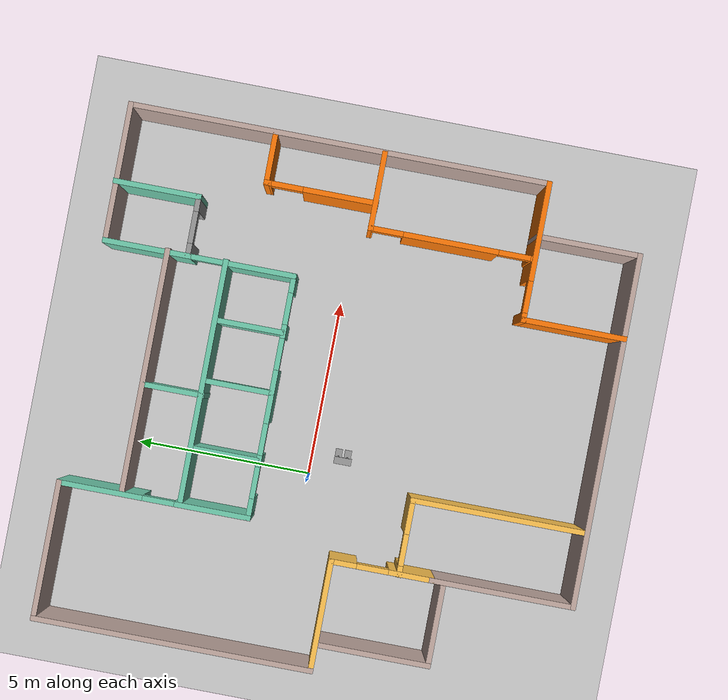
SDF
<sdf version="1.7">
 <world name="default">
  <model name="ground_plane">
   <static>1</static>
   <link name="link">
    <collision name="collision">
     <geometry><plane><normal>0 0 1</normal><size>100 100</size></plane></geometry>
     <surface>
      <contact><collide_bitmask>65535</collide_bitmask></contact>
      <friction><ode><mu>100</mu><mu2>50</mu2></ode></friction>
     </surface>
    </collision>
    <visual name="visual">
     <cast_shadows>0</cast_shadows>
     <geometry><plane><normal>0 0 1</normal><size>100 100</size></plane></geometry>
     <material>
      <script><uri>file://media/materials/scripts/gazebo.material</uri><name>Gazebo/Grey</name></script>
     </material>
    </visual>
   </link>
  </model>
  <model name="Building">
   <pose>2.005 -0.57388 0 0 -0 0</pose>
   <link name="Wall_0">
    <collision name="Wall_0_Collision">
     <geometry><box><size>8 0.15 2.5</size></box></geometry>
     <pose>0 0 1.25 0 -0 0</pose>
    </collision>
    <visual name="Wall_0_Visual">
     <pose>0 0 1.25 0 -0 0</pose>
     <geometry><box><size>8 0.15 2.5</size></box></geometry>
     <material>
      <script><uri>file://media/materials/scripts/gazebo.material</uri><name>Gazebo/Grey</name></script>
      <ambient>0.760784 0.662745 0.627451 1</ambient>
     </material>
     <meta><layer>0</layer></meta>
    </visual>
    <pose>-7.275 3.41888 0 0 -0 1.5708</pose>
   </link>
   <link name="Wall_1">
    <collision name="Wall_1_Collision">
     <geometry><box><size>4 0.15 2.5</size></box></geometry>
     <pose>0 0 1.25 0 -0 0</pose>
    </collision>
    <visual name="Wall_1_Visual">
     <pose>0 0 1.25 0 -0 0</pose>
     <geometry><box><size>4 0.15 2.5</size></box></geometry>
     <material>
      <script><uri>file://media/materials/scripts/gazebo.material</uri><name>Gazebo/Grey</name></script>
      <ambient>0.760784 0.662745 0.627451 1</ambient>
     </material>
     <meta><layer>0</layer></meta>
    </visual>
    <pose>-5.35 7.34388 0 0 -0 0</pose>
   </link>
   <link name="Wall_10">
    <pose>5.35 -4.50612 0 0 -0 3.14159</pose>
    <visual name="Wall_10_Visual_0">
     <pose>-0.586196 0 1.25 0 -0 0</pose>
     <geometry><box><size>2.82761 0.15 2.5</size></box></geometry>
     <material>
      <script><uri>file://media/materials/scripts/gazebo.material</uri><name>Gazebo/Grey</name></script>
      <ambient>0.996078 0.47451 0.0196078 1</ambient>
     </material>
     <meta><layer>0</layer></meta>
    </visual>
    <collision name="Wall_10_Collision_0">
     <geometry><box><size>2.82761 0.15 2.5</size></box></geometry>
     <pose>-0.586196 0 1.25 0 -0 0</pose>
    </collision>
    <visual name="Wall_10_Visual_1">
     <pose>1.8638 0 1.25 0 -0 0</pose>
     <geometry><box><size>0.272392 0.15 2.5</size></box></geometry>
     <material>
      <script><uri>file://media/materials/scripts/gazebo.material</uri><name>Gazebo/Grey</name></script>
      <ambient>0.996078 0.47451 0.0196078 1</ambient>
     </material>
     <meta><layer>0</layer></meta>
    </visual>
    <collision name="Wall_10_Collision_1">
     <geometry><box><size>0.272392 0.15 2.5</size></box></geometry>
     <pose>1.8638 0 1.25 0 -0 0</pose>
    </collision>
    <visual name="Wall_10_Visual_2">
     <pose>1.27761 0 2.25 0 -0 0</pose>
     <geometry><box><size>0.9 0.15 0.5</size></box></geometry>
     <material>
      <script><uri>file://media/materials/scripts/gazebo.material</uri><name>Gazebo/Grey</name></script>
      <ambient>0.996078 0.47451 0.0196078 1</ambient>
     </material>
     <meta><layer>0</layer></meta>
    </visual>
    <collision name="Wall_10_Collision_2">
     <geometry><box><size>0.9 0.15 0.5</size></box></geometry>
     <pose>1.27761 0 2.25 0 -0 0</pose>
    </collision>
   </link>
   <link name="Wall_11">
    <collision name="Wall_11_Collision">
     <geometry><box><size>3 0.15 2.5</size></box></geometry>
     <pose>0 0 1.25 0 -0 0</pose>
    </collision>
    <visual name="Wall_11_Visual">
     <pose>0 0 1.25 0 -0 0</pose>
     <geometry><box><size>3 0.15 2.5</size></box></geometry>
     <material>
      <script><uri>file://media/materials/scripts/gazebo.material</uri><name>Gazebo/Grey</name></script>
      <ambient>0.996078 0.47451 0.0196078 1</ambient>
     </material>
     <meta><layer>0</layer></meta>
    </visual>
    <pose>3.425 -5.93112 0 0 -0 -1.5708</pose>
   </link>
   <link name="Wall_12">
    <collision name="Wall_12_Collision">
     <geometry><box><size>2.5 0.15 2.5</size></box></geometry>
     <pose>0 0 1.25 0 -0 0</pose>
    </collision>
    <visual name="Wall_12_Visual">
     <pose>0 0 1.25 0 -0 0</pose>
     <geometry><box><size>2.5 0.15 2.5</size></box></geometry>
     <material>
      <script><uri>file://media/materials/scripts/gazebo.material</uri><name>Gazebo/Grey</name></script>
      <ambient>0.760784 0.662745 0.627451 1</ambient>
     </material>
     <meta><layer>0</layer></meta>
    </visual>
    <pose>4.6 -7.35612 0 0 -0 0</pose>
   </link>
   <link name="Wall_13">
    <collision name="Wall_13_Collision">
     <geometry><box><size>3 0.15 2.5</size></box></geometry>
     <pose>0 0 1.25 0 -0 0</pose>
    </collision>
    <visual name="Wall_13_Visual">
     <pose>0 0 1.25 0 -0 0</pose>
     <geometry><box><size>3 0.15 2.5</size></box></geometry>
     <material>
      <script><uri>file://media/materials/scripts/gazebo.material</uri><name>Gazebo/Grey</name></script>
      <ambient>0.760784 0.662745 0.627451 1</ambient>
     </material>
     <meta><layer>0</layer></meta>
    </visual>
    <pose>5.775 -5.93112 0 0 -0 1.5708</pose>
   </link>
   <link name="Wall_15">
    <collision name="Wall_15_Collision">
     <geometry><box><size>3.25 0.15 2.5</size></box></geometry>
     <pose>0 0 1.25 0 -0 0</pose>
    </collision>
    <visual name="Wall_15_Visual">
     <pose>0 0 1.25 0 -0 0</pose>
     <geometry><box><size>3.25 0.15 2.5</size></box></geometry>
     <material>
      <script><uri>file://media/materials/scripts/gazebo.material</uri><name>Gazebo/Grey</name></script>
      <ambient>1 0.764706 0.305882 1</ambient>
     </material>
     <meta><layer>0</layer></meta>
    </visual>
    <pose>-5.725 -0.506122 0 0 -0 0</pose>
   </link>
   <link name="Wall_16">
    <pose>-4.175 -1.93112 0 0 -0 -1.5708</pose>
    <visual name="Wall_16_Visual_0">
     <pose>-1.10276 0 1.25 0 -0 0</pose>
     <geometry><box><size>0.794472 0.15 2.5</size></box></geometry>
     <material>
      <script><uri>file://media/materials/scripts/gazebo.material</uri><name>Gazebo/Grey</name></script>
      <ambient>1 0.764706 0.305882 1</ambient>
     </material>
     <meta><layer>0</layer></meta>
    </visual>
    <collision name="Wall_16_Collision_0">
     <geometry><box><size>0.794472 0.15 2.5</size></box></geometry>
     <pose>-1.10276 0 1.25 0 -0 0</pose>
    </collision>
    <visual name="Wall_16_Visual_1">
     <pose>0.847236 0 1.25 0 -0 0</pose>
     <geometry><box><size>1.30553 0.15 2.5</size></box></geometry>
     <material>
      <script><uri>file://media/materials/scripts/gazebo.material</uri><name>Gazebo/Grey</name></script>
      <ambient>1 0.764706 0.305882 1</ambient>
     </material>
     <meta><layer>0</layer></meta>
    </visual>
    <collision name="Wall_16_Collision_1">
     <geometry><box><size>1.30553 0.15 2.5</size></box></geometry>
     <pose>0.847236 0 1.25 0 -0 0</pose>
    </collision>
    <visual name="Wall_16_Visual_2">
     <pose>-0.255528 0 2.25 0 -0 0</pose>
     <geometry><box><size>0.9 0.15 0.5</size></box></geometry>
     <material>
      <script><uri>file://media/materials/scripts/gazebo.material</uri><name>Gazebo/Grey</name></script>
      <ambient>1 0.764706 0.305882 1</ambient>
     </material>
     <meta><layer>0</layer></meta>
    </visual>
    <collision name="Wall_16_Collision_2">
     <geometry><box><size>0.9 0.15 0.5</size></box></geometry>
     <pose>-0.255528 0 2.25 0 -0 0</pose>
    </collision>
   </link>
   <link name="Wall_2">
    <pose>-3.425 4.66888 0 0 -0 -1.5708</pose>
    <visual name="Wall_2_Visual_0">
     <pose>-1.53531 0 1.25 0 -0 0</pose>
     <geometry><box><size>2.42938 0.15 2.5</size></box></geometry>
     <material>
      <script><uri>file://media/materials/scripts/gazebo.material</uri><name>Gazebo/Grey</name></script>
      <ambient>0.435294 0.796078 0.67451 1</ambient>
     </material>
     <meta><layer>0</layer></meta>
    </visual>
    <collision name="Wall_2_Collision_0">
     <geometry><box><size>2.42938 0.15 2.5</size></box></geometry>
     <pose>-1.53531 0 1.25 0 -0 0</pose>
    </collision>
    <visual name="Wall_2_Visual_1">
     <pose>1.66469 0 1.25 0 -0 0</pose>
     <geometry><box><size>2.17062 0.15 2.5</size></box></geometry>
     <material>
      <script><uri>file://media/materials/scripts/gazebo.material</uri><name>Gazebo/Grey</name></script>
      <ambient>0.435294 0.796078 0.67451 1</ambient>
     </material>
     <meta><layer>0</layer></meta>
    </visual>
    <collision name="Wall_2_Collision_1">
     <geometry><box><size>2.17062 0.15 2.5</size></box></geometry>
     <pose>1.66469 0 1.25 0 -0 0</pose>
    </collision>
    <visual name="Wall_2_Visual_2">
     <pose>0.129378 0 2.25 0 -0 0</pose>
     <geometry><box><size>0.9 0.15 0.5</size></box></geometry>
     <material>
      <script><uri>file://media/materials/scripts/gazebo.material</uri><name>Gazebo/Grey</name></script>
      <ambient>0.435294 0.796078 0.67451 1</ambient>
     </material>
     <meta><layer>0</layer></meta>
    </visual>
    <collision name="Wall_2_Collision_2">
     <geometry><box><size>0.9 0.15 0.5</size></box></geometry>
     <pose>0.129378 0 2.25 0 -0 0</pose>
    </collision>
   </link>
   <link name="Wall_20">
    <collision name="Wall_20_Collision">
     <geometry><box><size>7.75 0.15 2.5</size></box></geometry>
     <pose>0 0 1.25 0 -0 0</pose>
    </collision>
    <visual name="Wall_20_Visual">
     <pose>0 0 1.25 0 -0 0</pose>
     <geometry><box><size>7.75 0.15 2.5</size></box></geometry>
     <material>
      <script><uri>file://media/materials/scripts/gazebo.material</uri><name>Gazebo/Grey</name></script>
      <ambient>0.760784 0.662745 0.627451 1</ambient>
     </material>
     <meta><layer>0</layer></meta>
    </visual>
    <pose>-0.375 -7.35612 0 0 -0 3.14159</pose>
   </link>
   <link name="Wall_21">
    <collision name="Wall_21_Collision">
     <geometry><box><size>4.15 0.15 2.5</size></box></geometry>
     <pose>0 0 1.25 0 -0 0</pose>
    </collision>
    <visual name="Wall_21_Visual">
     <pose>0 0 1.25 0 -0 0</pose>
     <geometry><box><size>4.15 0.15 2.5</size></box></geometry>
     <material>
      <script><uri>file://media/materials/scripts/gazebo.material</uri><name>Gazebo/Grey</name></script>
      <ambient>0.760784 0.662745 0.627451 1</ambient>
     </material>
     <meta><layer>0</layer></meta>
    </visual>
    <pose>-4.175 -5.35612 0 0 -0 1.5708</pose>
   </link>
   <link name="Wall_23">
    <collision name="Wall_23_Collision">
     <geometry><box><size>3.25 0.15 2.5</size></box></geometry>
     <pose>0 0 1.25 0 -0 0</pose>
    </collision>
    <visual name="Wall_23_Visual">
     <pose>0 0 1.25 0 -0 0</pose>
     <geometry><box><size>3.25 0.15 2.5</size></box></geometry>
     <material>
      <script><uri>file://media/materials/scripts/gazebo.material</uri><name>Gazebo/Grey</name></script>
      <ambient>0.760784 0.662745 0.627451 1</ambient>
     </material>
     <meta><layer>0</layer></meta>
    </visual>
    <pose>-6.52628 -2.1407 0 0 -0 -1.5708</pose>
   </link>
   <link name="Wall_24">
    <collision name="Wall_24_Collision">
     <geometry><box><size>2.5 0.15 2.5</size></box></geometry>
     <pose>0 0 1.25 0 -0 0</pose>
    </collision>
    <visual name="Wall_24_Visual">
     <pose>0 0 1.25 0 -0 0</pose>
     <geometry><box><size>2.5 0.15 2.5</size></box></geometry>
     <material>
      <script><uri>file://media/materials/scripts/gazebo.material</uri><name>Gazebo/Grey</name></script>
      <ambient>0.760784 0.662745 0.627451 1</ambient>
     </material>
     <meta><layer>0</layer></meta>
    </visual>
    <pose>-5.35128 -3.6907 0 0 -0 0</pose>
   </link>
   <link name="Wall_26">
    <pose>-3.13547 -2.42611 0 0 -0 0</pose>
    <visual name="Wall_26_Visual_0">
     <pose>-0.964923 0 1.25 0 -0 0</pose>
     <geometry><box><size>0.320154 0.15 2.5</size></box></geometry>
     <material>
      <script><uri>file://media/materials/scripts/gazebo.material</uri><name>Gazebo/Grey</name></script>
      <ambient>1 0.764706 0.305882 1</ambient>
     </material>
     <meta><layer>0</layer></meta>
    </visual>
    <collision name="Wall_26_Collision_0">
     <geometry><box><size>0.320154 0.15 2.5</size></box></geometry>
     <pose>-0.964923 0 1.25 0 -0 0</pose>
    </collision>
    <visual name="Wall_26_Visual_1">
     <pose>0.610077 0 1.25 0 -0 0</pose>
     <geometry><box><size>1.02985 0.15 2.5</size></box></geometry>
     <material>
      <script><uri>file://media/materials/scripts/gazebo.material</uri><name>Gazebo/Grey</name></script>
      <ambient>1 0.764706 0.305882 1</ambient>
     </material>
     <meta><layer>0</layer></meta>
    </visual>
    <collision name="Wall_26_Collision_1">
     <geometry><box><size>1.02985 0.15 2.5</size></box></geometry>
     <pose>0.610077 0 1.25 0 -0 0</pose>
    </collision>
    <visual name="Wall_26_Visual_2">
     <pose>-0.354846 0 2.25 0 -0 0</pose>
     <geometry><box><size>0.9 0.15 0.5</size></box></geometry>
     <material>
      <script><uri>file://media/materials/scripts/gazebo.material</uri><name>Gazebo/Grey</name></script>
      <ambient>1 0.764706 0.305882 1</ambient>
     </material>
     <meta><layer>0</layer></meta>
    </visual>
    <collision name="Wall_26_Collision_2">
     <geometry><box><size>0.9 0.15 0.5</size></box></geometry>
     <pose>-0.354846 0 2.25 0 -0 0</pose>
    </collision>
   </link>
   <link name="Wall_27">
    <collision name="Wall_27_Collision">
     <geometry><box><size>5 0.15 2.5</size></box></geometry>
     <pose>0 0 1.25 0 -0 0</pose>
    </collision>
    <visual name="Wall_27_Visual">
     <pose>0 0 1.25 0 -0 0</pose>
     <geometry><box><size>5 0.15 2.5</size></box></geometry>
     <material>
      <script><uri>file://media/materials/scripts/gazebo.material</uri><name>Gazebo/Grey</name></script>
      <ambient>1 0.764706 0.305882 1</ambient>
     </material>
     <meta><layer>0</layer></meta>
    </visual>
    <pose>-2.08547 -4.85111 0 0 -0 -1.5708</pose>
   </link>
   <link name="Wall_29">
    <collision name="Wall_29_Collision">
     <geometry><box><size>7 0.15 2.5</size></box></geometry>
     <pose>0 0 1.25 0 -0 0</pose>
    </collision>
    <visual name="Wall_29_Visual">
     <pose>0 0 1.25 0 -0 0</pose>
     <geometry><box><size>7 0.15 2.5</size></box></geometry>
     <material>
      <script><uri>file://media/materials/scripts/gazebo.material</uri><name>Gazebo/Grey</name></script>
      <ambient>0.760784 0.662745 0.627451 1</ambient>
     </material>
     <meta><layer>0</layer></meta>
    </visual>
    <pose>0.03754 5.58055 0 0 -0 0</pose>
   </link>
   <link name="Wall_3">
    <pose>0 1.99388 0 0 -0 0</pose>
    <visual name="Wall_3_Visual_0">
     <pose>-3.18715 0 1.25 0 -0 0</pose>
     <geometry><box><size>0.625708 0.15 2.5</size></box></geometry>
     <material>
      <script><uri>file://media/materials/scripts/gazebo.material</uri><name>Gazebo/Grey</name></script>
      <ambient>0.435294 0.796078 0.67451 1</ambient>
     </material>
     <meta><layer>0</layer></meta>
    </visual>
    <collision name="Wall_3_Collision_0">
     <geometry><box><size>0.625708 0.15 2.5</size></box></geometry>
     <pose>-3.18715 0 1.25 0 -0 0</pose>
    </collision>
    <visual name="Wall_3_Visual_1">
     <pose>-1.81083 0 1.25 0 -0 0</pose>
     <geometry><box><size>0.326928 0.15 2.5</size></box></geometry>
     <material>
      <script><uri>file://media/materials/scripts/gazebo.material</uri><name>Gazebo/Grey</name></script>
      <ambient>0.435294 0.796078 0.67451 1</ambient>
     </material>
     <meta><layer>0</layer></meta>
    </visual>
    <collision name="Wall_3_Collision_1">
     <geometry><box><size>0.326928 0.15 2.5</size></box></geometry>
     <pose>-1.81083 0 1.25 0 -0 0</pose>
    </collision>
    <visual name="Wall_3_Visual_2">
     <pose>0.00945 0 1.25 0 -0 0</pose>
     <geometry><box><size>1.51363 0.15 2.5</size></box></geometry>
     <material>
      <script><uri>file://media/materials/scripts/gazebo.material</uri><name>Gazebo/Grey</name></script>
      <ambient>0.435294 0.796078 0.67451 1</ambient>
     </material>
     <meta><layer>0</layer></meta>
    </visual>
    <collision name="Wall_3_Collision_2">
     <geometry><box><size>1.51363 0.15 2.5</size></box></geometry>
     <pose>0.00945 0 1.25 0 -0 0</pose>
    </collision>
    <visual name="Wall_3_Visual_3">
     <pose>1.8599 0 1.25 0 -0 0</pose>
     <geometry><box><size>0.387269 0.15 2.5</size></box></geometry>
     <material>
      <script><uri>file://media/materials/scripts/gazebo.material</uri><name>Gazebo/Grey</name></script>
      <ambient>0.435294 0.796078 0.67451 1</ambient>
     </material>
     <meta><layer>0</layer></meta>
    </visual>
    <collision name="Wall_3_Collision_3">
     <geometry><box><size>0.387269 0.15 2.5</size></box></geometry>
     <pose>1.8599 0 1.25 0 -0 0</pose>
    </collision>
    <visual name="Wall_3_Visual_4">
     <pose>3.22677 0 1.25 0 -0 0</pose>
     <geometry><box><size>0.546467 0.15 2.5</size></box></geometry>
     <material>
      <script><uri>file://media/materials/scripts/gazebo.material</uri><name>Gazebo/Grey</name></script>
      <ambient>0.435294 0.796078 0.67451 1</ambient>
     </material>
     <meta><layer>0</layer></meta>
    </visual>
    <collision name="Wall_3_Collision_4">
     <geometry><box><size>0.546467 0.15 2.5</size></box></geometry>
     <pose>3.22677 0 1.25 0 -0 0</pose>
    </collision>
    <visual name="Wall_3_Visual_5">
     <pose>-2.42429 0 2.25 0 -0 0</pose>
     <geometry><box><size>0.9 0.15 0.5</size></box></geometry>
     <material>
      <script><uri>file://media/materials/scripts/gazebo.material</uri><name>Gazebo/Grey</name></script>
      <ambient>0.435294 0.796078 0.67451 1</ambient>
     </material>
     <meta><layer>0</layer></meta>
    </visual>
    <collision name="Wall_3_Collision_5">
     <geometry><box><size>0.9 0.15 0.5</size></box></geometry>
     <pose>-2.42429 0 2.25 0 -0 0</pose>
    </collision>
    <visual name="Wall_3_Visual_6">
     <pose>-1.19736 0 2.25 0 -0 0</pose>
     <geometry><box><size>0.9 0.15 0.5</size></box></geometry>
     <material>
      <script><uri>file://media/materials/scripts/gazebo.material</uri><name>Gazebo/Grey</name></script>
      <ambient>0.435294 0.796078 0.67451 1</ambient>
     </material>
     <meta><layer>0</layer></meta>
    </visual>
    <collision name="Wall_3_Collision_6">
     <geometry><box><size>0.9 0.15 0.5</size></box></geometry>
     <pose>-1.19736 0 2.25 0 -0 0</pose>
    </collision>
    <visual name="Wall_3_Visual_7">
     <pose>1.21626 0 2.25 0 -0 0</pose>
     <geometry><box><size>0.9 0.15 0.5</size></box></geometry>
     <material>
      <script><uri>file://media/materials/scripts/gazebo.material</uri><name>Gazebo/Grey</name></script>
      <ambient>0.435294 0.796078 0.67451 1</ambient>
     </material>
     <meta><layer>0</layer></meta>
    </visual>
    <collision name="Wall_3_Collision_7">
     <geometry><box><size>0.9 0.15 0.5</size></box></geometry>
     <pose>1.21626 0 2.25 0 -0 0</pose>
    </collision>
    <visual name="Wall_3_Visual_8">
     <pose>2.50353 0 2.25 0 -0 0</pose>
     <geometry><box><size>0.9 0.15 0.5</size></box></geometry>
     <material>
      <script><uri>file://media/materials/scripts/gazebo.material</uri><name>Gazebo/Grey</name></script>
      <ambient>0.435294 0.796078 0.67451 1</ambient>
     </material>
     <meta><layer>0</layer></meta>
    </visual>
    <collision name="Wall_3_Collision_8">
     <geometry><box><size>0.9 0.15 0.5</size></box></geometry>
     <pose>2.50353 0 2.25 0 -0 0</pose>
    </collision>
   </link>
   <link name="Wall_31">
    <collision name="Wall_31_Collision">
     <geometry><box><size>7 0.15 2.5</size></box></geometry>
     <pose>0 0 1.25 0 -0 0</pose>
    </collision>
    <visual name="Wall_31_Visual">
     <pose>0 0 1.25 0 -0 0</pose>
     <geometry><box><size>7 0.15 2.5</size></box></geometry>
     <material>
      <script><uri>file://media/materials/scripts/gazebo.material</uri><name>Gazebo/Grey</name></script>
      <ambient>0.435294 0.796078 0.67451 1</ambient>
     </material>
     <meta><layer>0</layer></meta>
    </visual>
    <pose>0.03754 3.93133 0 0 -0 0</pose>
   </link>
   <link name="Wall_37">
    <collision name="Wall_37_Collision">
     <geometry><box><size>1.75 0.15 2.5</size></box></geometry>
     <pose>0 0 1.25 0 -0 0</pose>
    </collision>
    <visual name="Wall_37_Visual">
     <pose>0 0 1.25 0 -0 0</pose>
     <geometry><box><size>1.75 0.15 2.5</size></box></geometry>
     <material>
      <script><uri>file://media/materials/scripts/gazebo.material</uri><name>Gazebo/Grey</name></script>
      <ambient>0.435294 0.796078 0.67451 1</ambient>
     </material>
     <meta><layer>0</layer></meta>
    </visual>
    <pose>-0.313255 4.70425 0 0 -0 1.5708</pose>
   </link>
   <link name="Wall_39">
    <collision name="Wall_39_Collision">
     <geometry><box><size>2 0.15 2.5</size></box></geometry>
     <pose>0 0 1.25 0 -0 0</pose>
    </collision>
    <visual name="Wall_39_Visual">
     <pose>0 0 1.25 0 -0 0</pose>
     <geometry><box><size>2 0.15 2.5</size></box></geometry>
     <material>
      <script><uri>file://media/materials/scripts/gazebo.material</uri><name>Gazebo/Grey</name></script>
      <ambient>0.435294 0.796078 0.67451 1</ambient>
     </material>
     <meta><layer>0</layer></meta>
    </visual>
    <pose>0.106507 2.94427 0 0 -0 -1.5708</pose>
   </link>
   <link name="Wall_41">
    <collision name="Wall_41_Collision">
     <geometry><box><size>2 0.15 2.5</size></box></geometry>
     <pose>0 0 1.25 0 -0 0</pose>
    </collision>
    <visual name="Wall_41_Visual">
     <pose>0 0 1.25 0 -0 0</pose>
     <geometry><box><size>2 0.15 2.5</size></box></geometry>
     <material>
      <script><uri>file://media/materials/scripts/gazebo.material</uri><name>Gazebo/Grey</name></script>
      <ambient>0.435294 0.796078 0.67451 1</ambient>
     </material>
     <meta><layer>0</layer></meta>
    </visual>
    <pose>-1.79991 2.99674 0 0 -0 -1.5708</pose>
   </link>
   <link name="Wall_43">
    <collision name="Wall_43_Collision">
     <geometry><box><size>2 0.15 2.5</size></box></geometry>
     <pose>0 0 1.25 0 -0 0</pose>
    </collision>
    <visual name="Wall_43_Visual">
     <pose>0 0 1.25 0 -0 0</pose>
     <geometry><box><size>2 0.15 2.5</size></box></geometry>
     <material>
      <script><uri>file://media/materials/scripts/gazebo.material</uri><name>Gazebo/Grey</name></script>
      <ambient>0.435294 0.796078 0.67451 1</ambient>
     </material>
     <meta><layer>0</layer></meta>
    </visual>
    <pose>1.82053 2.97925 0 0 -0 -1.5708</pose>
   </link>
   <link name="Wall_45">
    <pose>4.29958 5.00612 0 0 -0 0</pose>
    <visual name="Wall_45_Visual_0">
     <pose>-0.695639 0 1.25 0 -0 0</pose>
     <geometry><box><size>0.358721 0.15 2.5</size></box></geometry>
     <material>
      <script><uri>file://media/materials/scripts/gazebo.material</uri><name>Gazebo/Grey</name></script>
      <ambient>1 1 1 1</ambient>
     </material>
     <meta><layer>0</layer></meta>
    </visual>
    <collision name="Wall_45_Collision_0">
     <geometry><box><size>0.358721 0.15 2.5</size></box></geometry>
     <pose>-0.695639 0 1.25 0 -0 0</pose>
    </collision>
    <visual name="Wall_45_Visual_1">
     <pose>0.629361 0 1.25 0 -0 0</pose>
     <geometry><box><size>0.491279 0.15 2.5</size></box></geometry>
     <material>
      <script><uri>file://media/materials/scripts/gazebo.material</uri><name>Gazebo/Grey</name></script>
      <ambient>1 1 1 1</ambient>
     </material>
     <meta><layer>0</layer></meta>
    </visual>
    <collision name="Wall_45_Collision_1">
     <geometry><box><size>0.491279 0.15 2.5</size></box></geometry>
     <pose>0.629361 0 1.25 0 -0 0</pose>
    </collision>
    <visual name="Wall_45_Visual_2">
     <pose>-0.066279 0 2.25 0 -0 0</pose>
     <geometry><box><size>0.9 0.15 0.5</size></box></geometry>
     <material>
      <script><uri>file://media/materials/scripts/gazebo.material</uri><name>Gazebo/Grey</name></script>
      <ambient>1 1 1 1</ambient>
     </material>
     <meta><layer>0</layer></meta>
    </visual>
    <collision name="Wall_45_Collision_2">
     <geometry><box><size>0.9 0.15 0.5</size></box></geometry>
     <pose>-0.066279 0 2.25 0 -0 0</pose>
    </collision>
   </link>
   <link name="Wall_46">
    <collision name="Wall_46_Collision">
     <geometry><box><size>2.5 0.15 2.5</size></box></geometry>
     <pose>0 0 1.25 0 -0 0</pose>
    </collision>
    <visual name="Wall_46_Visual">
     <pose>0 0 1.25 0 -0 0</pose>
     <geometry><box><size>2.5 0.15 2.5</size></box></geometry>
     <material>
      <script><uri>file://media/materials/scripts/gazebo.material</uri><name>Gazebo/Grey</name></script>
      <ambient>0.435294 0.796078 0.67451 1</ambient>
     </material>
     <meta><layer>0</layer></meta>
    </visual>
    <pose>5.09958 6.18112 0 0 -0 1.5708</pose>
   </link>
   <link name="Wall_51">
    <pose>5.13841 -2.15277 0 0 -0 1.5708</pose>
    <visual name="Wall_51_Visual_0">
     <pose>-2.30027 0 1.25 0 -0 0</pose>
     <geometry><box><size>0.149453 0.15 2.5</size></box></geometry>
     <material>
      <script><uri>file://media/materials/scripts/gazebo.material</uri><name>Gazebo/Grey</name></script>
      <ambient>0.996078 0.47451 0.0196078 1</ambient>
     </material>
     <meta><layer>0</layer></meta>
    </visual>
    <collision name="Wall_51_Collision_0">
     <geometry><box><size>0.149453 0.15 2.5</size></box></geometry>
     <pose>-2.30027 0 1.25 0 -0 0</pose>
    </collision>
    <visual name="Wall_51_Visual_1">
     <pose>0.024617 0 1.25 0 -0 0</pose>
     <geometry><box><size>2.70033 0.15 2.5</size></box></geometry>
     <material>
      <script><uri>file://media/materials/scripts/gazebo.material</uri><name>Gazebo/Grey</name></script>
      <ambient>0.996078 0.47451 0.0196078 1</ambient>
     </material>
     <meta><layer>0</layer></meta>
    </visual>
    <collision name="Wall_51_Collision_1">
     <geometry><box><size>2.70033 0.15 2.5</size></box></geometry>
     <pose>0.024617 0 1.25 0 -0 0</pose>
    </collision>
    <visual name="Wall_51_Visual_2">
     <pose>2.32489 0 1.25 0 -0 0</pose>
     <geometry><box><size>0.100218 0.15 2.5</size></box></geometry>
     <material>
      <script><uri>file://media/materials/scripts/gazebo.material</uri><name>Gazebo/Grey</name></script>
      <ambient>0.996078 0.47451 0.0196078 1</ambient>
     </material>
     <meta><layer>0</layer></meta>
    </visual>
    <collision name="Wall_51_Collision_2">
     <geometry><box><size>0.100218 0.15 2.5</size></box></geometry>
     <pose>2.32489 0 1.25 0 -0 0</pose>
    </collision>
    <visual name="Wall_51_Visual_3">
     <pose>-1.77555 0 2.25 0 -0 0</pose>
     <geometry><box><size>0.9 0.15 0.5</size></box></geometry>
     <material>
      <script><uri>file://media/materials/scripts/gazebo.material</uri><name>Gazebo/Grey</name></script>
      <ambient>0.996078 0.47451 0.0196078 1</ambient>
     </material>
     <meta><layer>0</layer></meta>
    </visual>
    <collision name="Wall_51_Collision_3">
     <geometry><box><size>0.9 0.15 0.5</size></box></geometry>
     <pose>-1.77555 0 2.25 0 -0 0</pose>
    </collision>
    <visual name="Wall_51_Visual_4">
     <pose>1.82478 0 2.25 0 -0 0</pose>
     <geometry><box><size>0.9 0.15 0.5</size></box></geometry>
     <material>
      <script><uri>file://media/materials/scripts/gazebo.material</uri><name>Gazebo/Grey</name></script>
      <ambient>0.996078 0.47451 0.0196078 1</ambient>
     </material>
     <meta><layer>0</layer></meta>
    </visual>
    <collision name="Wall_51_Collision_4">
     <geometry><box><size>0.9 0.15 0.5</size></box></geometry>
     <pose>1.82478 0 2.25 0 -0 0</pose>
    </collision>
   </link>
   <link name="Wall_52">
    <collision name="Wall_52_Collision">
     <geometry><box><size>2.25 0.15 2.5</size></box></geometry>
     <pose>0 0 1.25 0 -0 0</pose>
    </collision>
    <visual name="Wall_52_Visual">
     <pose>0 0 1.25 0 -0 0</pose>
     <geometry><box><size>2.25 0.15 2.5</size></box></geometry>
     <material>
      <script><uri>file://media/materials/scripts/gazebo.material</uri><name>Gazebo/Grey</name></script>
      <ambient>0.996078 0.47451 0.0196078 1</ambient>
     </material>
     <meta><layer>0</layer></meta>
    </visual>
    <pose>6.18841 0.147233 0 0 -0 0</pose>
   </link>
   <link name="Wall_54">
    <pose>5.84239 1.68463 0 0 -0 1.5708</pose>
    <visual name="Wall_54_Visual_0">
     <pose>-0.555402 0 1.25 0 -0 0</pose>
     <geometry><box><size>2.1392 0.15 2.5</size></box></geometry>
     <material>
      <script><uri>file://media/materials/scripts/gazebo.material</uri><name>Gazebo/Grey</name></script>
      <ambient>0.996078 0.47451 0.0196078 1</ambient>
     </material>
     <meta><layer>0</layer></meta>
    </visual>
    <collision name="Wall_54_Collision_0">
     <geometry><box><size>2.1392 0.15 2.5</size></box></geometry>
     <pose>-0.555402 0 1.25 0 -0 0</pose>
    </collision>
    <visual name="Wall_54_Visual_1">
     <pose>1.5196 0 1.25 0 -0 0</pose>
     <geometry><box><size>0.210803 0.15 2.5</size></box></geometry>
     <material>
      <script><uri>file://media/materials/scripts/gazebo.material</uri><name>Gazebo/Grey</name></script>
      <ambient>0.996078 0.47451 0.0196078 1</ambient>
     </material>
     <meta><layer>0</layer></meta>
    </visual>
    <collision name="Wall_54_Collision_1">
     <geometry><box><size>0.210803 0.15 2.5</size></box></geometry>
     <pose>1.5196 0 1.25 0 -0 0</pose>
    </collision>
    <visual name="Wall_54_Visual_2">
     <pose>0.964197 0 2.25 0 -0 0</pose>
     <geometry><box><size>0.9 0.15 0.5</size></box></geometry>
     <material>
      <script><uri>file://media/materials/scripts/gazebo.material</uri><name>Gazebo/Grey</name></script>
      <ambient>0.996078 0.47451 0.0196078 1</ambient>
     </material>
     <meta><layer>0</layer></meta>
    </visual>
    <collision name="Wall_54_Collision_2">
     <geometry><box><size>0.9 0.15 0.5</size></box></geometry>
     <pose>0.964197 0 2.25 0 -0 0</pose>
    </collision>
   </link>
   <link name="Wall_55">
    <collision name="Wall_55_Collision">
     <geometry><box><size>1.5 0.15 2.5</size></box></geometry>
     <pose>0 0 1.25 0 -0 0</pose>
    </collision>
    <visual name="Wall_55_Visual">
     <pose>0 0 1.25 0 -0 0</pose>
     <geometry><box><size>1.5 0.15 2.5</size></box></geometry>
     <material>
      <script><uri>file://media/materials/scripts/gazebo.material</uri><name>Gazebo/Grey</name></script>
      <ambient>0.996078 0.47451 0.0196078 1</ambient>
     </material>
     <meta><layer>0</layer></meta>
    </visual>
    <pose>6.51738 3.23463 0 0 -0 0</pose>
   </link>
   <link name="Wall_6">
    <pose>3.425 4.66888 0 0 -0 1.5708</pose>
    <visual name="Wall_6_Visual_0">
     <pose>-1.70492 0 1.25 0 -0 0</pose>
     <geometry><box><size>2.09017 0.15 2.5</size></box></geometry>
     <material>
      <script><uri>file://media/materials/scripts/gazebo.material</uri><name>Gazebo/Grey</name></script>
      <ambient>0.435294 0.796078 0.67451 1</ambient>
     </material>
     <meta><layer>0</layer></meta>
    </visual>
    <collision name="Wall_6_Collision_0">
     <geometry><box><size>2.09017 0.15 2.5</size></box></geometry>
     <pose>-1.70492 0 1.25 0 -0 0</pose>
    </collision>
    <visual name="Wall_6_Visual_1">
     <pose>1.49508 0 1.25 0 -0 0</pose>
     <geometry><box><size>2.50983 0.15 2.5</size></box></geometry>
     <material>
      <script><uri>file://media/materials/scripts/gazebo.material</uri><name>Gazebo/Grey</name></script>
      <ambient>0.435294 0.796078 0.67451 1</ambient>
     </material>
     <meta><layer>0</layer></meta>
    </visual>
    <collision name="Wall_6_Collision_1">
     <geometry><box><size>2.50983 0.15 2.5</size></box></geometry>
     <pose>1.49508 0 1.25 0 -0 0</pose>
    </collision>
    <visual name="Wall_6_Visual_2">
     <pose>-0.209832 0 2.25 0 -0 0</pose>
     <geometry><box><size>0.9 0.15 0.5</size></box></geometry>
     <material>
      <script><uri>file://media/materials/scripts/gazebo.material</uri><name>Gazebo/Grey</name></script>
      <ambient>0.435294 0.796078 0.67451 1</ambient>
     </material>
     <meta><layer>0</layer></meta>
    </visual>
    <collision name="Wall_6_Collision_2">
     <geometry><box><size>0.9 0.15 0.5</size></box></geometry>
     <pose>-0.209832 0 2.25 0 -0 0</pose>
    </collision>
   </link>
   <link name="Wall_8">
    <collision name="Wall_8_Collision">
     <geometry><box><size>4 0.15 2.5</size></box></geometry>
     <pose>0 0 1.25 0 -0 0</pose>
    </collision>
    <visual name="Wall_8_Visual">
     <pose>0 0 1.25 0 -0 0</pose>
     <geometry><box><size>4 0.15 2.5</size></box></geometry>
     <material>
      <script><uri>file://media/materials/scripts/gazebo.material</uri><name>Gazebo/Grey</name></script>
      <ambient>0.760784 0.662745 0.627451 1</ambient>
     </material>
     <meta><layer>0</layer></meta>
    </visual>
    <pose>5.35 7.34388 0 0 -0 0</pose>
   </link>
   <link name="Wall_9">
    <collision name="Wall_9_Collision">
     <geometry><box><size>12 0.15 2.5</size></box></geometry>
     <pose>0 0 1.25 0 -0 0</pose>
    </collision>
    <visual name="Wall_9_Visual">
     <pose>0 0 1.25 0 -0 0</pose>
     <geometry><box><size>12 0.15 2.5</size></box></geometry>
     <material>
      <script><uri>file://media/materials/scripts/gazebo.material</uri><name>Gazebo/Grey</name></script>
      <ambient>0.760784 0.662745 0.627451 1</ambient>
     </material>
     <meta><layer>0</layer></meta>
    </visual>
    <pose>7.275 1.41888 0 0 -0 -1.5708</pose>
   </link>
   <static>1</static>
  </model>
  <model name="HumanoidRobot">
   <link name="link_0">
    <inertial>
     <mass>1</mass>
     <inertia>
      <ixx>0.166667</ixx>
      <ixy>0</ixy>
      <ixz>0</ixz>
      <iyy>0.166667</iyy>
      <iyz>0</iyz>
      <izz>0.166667</izz>
     </inertia>
    </inertial>
    <pose>0.037224 0.016312 1 0 -0 0</pose>
    <visual name="visual">
     <geometry><box><size>0.2 0.5 0.1</size></box></geometry>
     <material>
      <lighting>1</lighting>
      <script><uri>file://media/materials/scripts/gazebo.material</uri><name>Gazebo/Grey</name></script>
      <shader type="pixel"><normal_map>__default__</normal_map></shader>
      <ambient>0.3 0.3 0.3 1</ambient>
      <diffuse>0.7 0.7 0.7 1</diffuse>
      <specular>0.01 0.01 0.01 1</specular>
      <emissive>0 0 0 1</emissive>
     </material>
    </visual>
    <collision name="collision">
     <geometry><box><size>0.2 0.5 0.1</size></box></geometry>
     <surface>
      <friction>
       <ode><mu>1</mu><mu2>1</mu2><fdir1>0 0 0</fdir1><slip1>0</slip1><slip2>0</slip2></ode>
       <torsional>
        <coefficient>1</coefficient>
        <patch_radius>0</patch_radius>
        <surface_radius>0</surface_radius>
        <use_patch_radius>1</use_patch_radius>
        <ode><slip>0</slip></ode>
       </torsional>
      </friction>
      <bounce><restitution_coefficient>0</restitution_coefficient><threshold>1e+06</threshold></bounce>
      <contact>
       <collide_without_contact>0</collide_without_contact>
       <collide_without_contact_bitmask>1</collide_without_contact_bitmask>
       <collide_bitmask>1</collide_bitmask>
       <ode>
        <soft_cfm>0</soft_cfm>
        <soft_erp>0.2</soft_erp>
        <kp>1e+13</kp>
        <kd>1</kd>
        <max_vel>0.01</max_vel>
        <min_depth>0</min_depth>
       </ode>
       <bullet>
        <split_impulse>1</split_impulse>
        <split_impulse_penetration_threshold>-0.01</split_impulse_penetration_threshold>
        <soft_cfm>0</soft_cfm>
        <soft_erp>0.2</soft_erp>
        <kp>1e+13</kp>
        <kd>1</kd>
       </bullet>
      </contact>
     </surface>
    </collision>
   </link>
   <link name="link_1">
    <inertial>
     <mass>1</mass>
     <inertia>
      <ixx>0.166667</ixx>
      <ixy>0</ixy>
      <ixz>0</ixz>
      <iyy>0.166667</iyy>
      <iyz>0</iyz>
      <izz>0.166667</izz>
     </inertia>
    </inertial>
    <pose>0.139866 -0.111553 0.00652 0 -0 0</pose>
    <visual name="visual">
     <geometry><box><size>0.4 0.2 0.009</size></box></geometry>
     <material>
      <lighting>1</lighting>
      <script><uri>file://media/materials/scripts/gazebo.material</uri><name>Gazebo/Grey</name></script>
      <shader type="pixel"><normal_map>__default__</normal_map></shader>
      <ambient>0.3 0.3 0.3 1</ambient>
      <diffuse>0.7 0.7 0.7 1</diffuse>
      <specular>0.01 0.01 0.01 1</specular>
      <emissive>0 0 0 1</emissive>
     </material>
    </visual>
    <collision name="collision">
     <geometry><box><size>0.4 0.2 0.009</size></box></geometry>
     <surface>
      <friction>
       <ode><mu>1</mu><mu2>1</mu2><fdir1>0 0 0</fdir1><slip1>0</slip1><slip2>0</slip2></ode>
       <torsional>
        <coefficient>1</coefficient>
        <patch_radius>0</patch_radius>
        <surface_radius>0</surface_radius>
        <use_patch_radius>1</use_patch_radius>
        <ode><slip>0</slip></ode>
       </torsional>
      </friction>
      <bounce><restitution_coefficient>0</restitution_coefficient><threshold>1e+06</threshold></bounce>
      <contact>
       <collide_without_contact>0</collide_without_contact>
       <collide_without_contact_bitmask>1</collide_without_contact_bitmask>
       <collide_bitmask>1</collide_bitmask>
       <ode>
        <soft_cfm>0</soft_cfm>
        <soft_erp>0.2</soft_erp>
        <kp>1e+13</kp>
        <kd>1</kd>
        <max_vel>0.01</max_vel>
        <min_depth>0</min_depth>
       </ode>
       <bullet>
        <split_impulse>1</split_impulse>
        <split_impulse_penetration_threshold>-0.01</split_impulse_penetration_threshold>
        <soft_cfm>0</soft_cfm>
        <soft_erp>0.2</soft_erp>
        <kp>1e+13</kp>
        <kd>1</kd>
       </bullet>
      </contact>
     </surface>
    </collision>
   </link>
   <link name="link_1_clone">
    <inertial>
     <mass>1</mass>
     <inertia>
      <ixx>0.166667</ixx>
      <ixy>0</ixy>
      <ixz>0</ixz>
      <iyy>0.166667</iyy>
      <iyz>0</iyz>
      <izz>0.166667</izz>
     </inertia>
    </inertial>
    <pose>0.137224 0.156083 0.00652 0 -0 0</pose>
    <visual name="visual">
     <geometry><box><size>0.4 0.2 0.009</size></box></geometry>
     <material>
      <lighting>1</lighting>
      <script><uri>file://media/materials/scripts/gazebo.material</uri><name>Gazebo/Grey</name></script>
      <shader type="pixel"><normal_map>__default__</normal_map></shader>
      <ambient>0.3 0.3 0.3 1</ambient>
      <diffuse>0.7 0.7 0.7 1</diffuse>
      <specular>0.01 0.01 0.01 1</specular>
      <emissive>0 0 0 1</emissive>
     </material>
    </visual>
    <collision name="collision">
     <geometry><box><size>0.4 0.2 0.009</size></box></geometry>
     <surface>
      <friction>
       <ode><mu>1</mu><mu2>1</mu2><fdir1>0 0 0</fdir1><slip1>0</slip1><slip2>0</slip2></ode>
       <torsional>
        <coefficient>1</coefficient>
        <patch_radius>0</patch_radius>
        <surface_radius>0</surface_radius>
        <use_patch_radius>1</use_patch_radius>
        <ode><slip>0</slip></ode>
       </torsional>
      </friction>
      <bounce><restitution_coefficient>0</restitution_coefficient><threshold>1e+06</threshold></bounce>
      <contact>
       <collide_without_contact>0</collide_without_contact>
       <collide_without_contact_bitmask>1</collide_without_contact_bitmask>
       <collide_bitmask>1</collide_bitmask>
       <ode>
        <soft_cfm>0</soft_cfm>
        <soft_erp>0.2</soft_erp>
        <kp>1e+13</kp>
        <kd>1</kd>
        <max_vel>0.01</max_vel>
        <min_depth>0</min_depth>
       </ode>
       <bullet>
        <split_impulse>1</split_impulse>
        <split_impulse_penetration_threshold>-0.01</split_impulse_penetration_threshold>
        <soft_cfm>0</soft_cfm>
        <soft_erp>0.2</soft_erp>
        <kp>1e+13</kp>
        <kd>1</kd>
       </bullet>
      </contact>
     </surface>
    </collision>
   </link>
   <link name="link_2">
    <inertial>
     <mass>1</mass>
     <inertia><ixx>0.145833</ixx><ixy>0</ixy><ixz>0</ixz><iyy>0.145833</iyy><iyz>0</iyz><izz>0.125</izz></inertia>
    </inertial>
    <pose>0.114643 -0.111553 0.22702 0 -0 0</pose>
    <visual name="visual">
     <geometry><cylinder><radius>0.02</radius><length>0.45</length></cylinder></geometry>
     <material>
      <lighting>1</lighting>
      <script><uri>file://media/materials/scripts/gazebo.material</uri><name>Gazebo/Grey</name></script>
      <shader type="pixel"><normal_map>__default__</normal_map></shader>
      <ambient>0.3 0.3 0.3 1</ambient>
      <diffuse>0.7 0.7 0.7 1</diffuse>
      <specular>0.01 0.01 0.01 1</specular>
      <emissive>0 0 0 1</emissive>
     </material>
    </visual>
    <collision name="collision">
     <geometry><cylinder><radius>0.02</radius><length>0.45</length></cylinder></geometry>
     <surface>
      <friction>
       <ode><mu>1</mu><mu2>1</mu2><fdir1>0 0 0</fdir1><slip1>0</slip1><slip2>0</slip2></ode>
       <torsional>
        <coefficient>1</coefficient>
        <patch_radius>0</patch_radius>
        <surface_radius>0</surface_radius>
        <use_patch_radius>1</use_patch_radius>
        <ode><slip>0</slip></ode>
       </torsional>
      </friction>
      <bounce><restitution_coefficient>0</restitution_coefficient><threshold>1e+06</threshold></bounce>
      <contact>
       <collide_without_contact>0</collide_without_contact>
       <collide_without_contact_bitmask>1</collide_without_contact_bitmask>
       <collide_bitmask>1</collide_bitmask>
       <ode>
        <soft_cfm>0</soft_cfm>
        <soft_erp>0.2</soft_erp>
        <kp>1e+13</kp>
        <kd>1</kd>
        <max_vel>0.01</max_vel>
        <min_depth>0</min_depth>
       </ode>
       <bullet>
        <split_impulse>1</split_impulse>
        <split_impulse_penetration_threshold>-0.01</split_impulse_penetration_threshold>
        <soft_cfm>0</soft_cfm>
        <soft_erp>0.2</soft_erp>
        <kp>1e+13</kp>
        <kd>1</kd>
       </bullet>
      </contact>
     </surface>
    </collision>
   </link>
   <link name="link_2_clone">
    <inertial>
     <mass>1</mass>
     <inertia><ixx>0.145833</ixx><ixy>0</ixy><ixz>0</ixz><iyy>0.145833</iyy><iyz>0</iyz><izz>0.125</izz></inertia>
    </inertial>
    <pose>0.064643 -0.113688 0.70101 0 -0 0</pose>
    <visual name="visual">
     <pose>0 0 0 0 -0.2 0</pose>
     <geometry><cylinder><radius>0.02</radius><length>0.5</length></cylinder></geometry>
     <material>
      <lighting>1</lighting>
      <script><uri>file://media/materials/scripts/gazebo.material</uri><name>Gazebo/Grey</name></script>
      <shader type="pixel"><normal_map>__default__</normal_map></shader>
      <ambient>0.3 0.3 0.3 1</ambient>
      <diffuse>0.7 0.7 0.7 1</diffuse>
      <specular>0.01 0.01 0.01 1</specular>
      <emissive>0 0 0 1</emissive>
     </material>
    </visual>
    <collision name="collision">
     <pose>0 0 0 0 -0.2 0</pose>
     <geometry><cylinder><radius>0.02</radius><length>0.5</length></cylinder></geometry>
     <surface>
      <friction>
       <ode><mu>1</mu><mu2>1</mu2><fdir1>0 0 0</fdir1><slip1>0</slip1><slip2>0</slip2></ode>
       <torsional>
        <coefficient>1</coefficient>
        <patch_radius>0</patch_radius>
        <surface_radius>0</surface_radius>
        <use_patch_radius>1</use_patch_radius>
        <ode><slip>0</slip></ode>
       </torsional>
      </friction>
      <bounce><restitution_coefficient>0</restitution_coefficient><threshold>1e+06</threshold></bounce>
      <contact>
       <collide_without_contact>0</collide_without_contact>
       <collide_without_contact_bitmask>1</collide_without_contact_bitmask>
       <collide_bitmask>1</collide_bitmask>
       <ode>
        <soft_cfm>0</soft_cfm>
        <soft_erp>0.2</soft_erp>
        <kp>1e+13</kp>
        <kd>1</kd>
        <max_vel>0.01</max_vel>
        <min_depth>0</min_depth>
       </ode>
       <bullet>
        <split_impulse>1</split_impulse>
        <split_impulse_penetration_threshold>-0.01</split_impulse_penetration_threshold>
        <soft_cfm>0</soft_cfm>
        <soft_erp>0.2</soft_erp>
        <kp>1e+13</kp>
        <kd>1</kd>
       </bullet>
      </contact>
     </surface>
    </collision>
   </link>
   <link name="link_2_clone_0">
    <inertial>
     <mass>1</mass>
     <inertia><ixx>0.145833</ixx><ixy>0</ixy><ixz>0</ixz><iyy>0.145833</iyy><iyz>0</iyz><izz>0.125</izz></inertia>
    </inertial>
    <pose>0.117224 0.156472 0.22702 0 -0 0</pose>
    <visual name="visual">
     <geometry><cylinder><radius>0.02</radius><length>0.45</length></cylinder></geometry>
     <material>
      <lighting>1</lighting>
      <script><uri>file://media/materials/scripts/gazebo.material</uri><name>Gazebo/Grey</name></script>
      <shader type="pixel"><normal_map>__default__</normal_map></shader>
      <ambient>0.3 0.3 0.3 1</ambient>
      <diffuse>0.7 0.7 0.7 1</diffuse>
      <specular>0.01 0.01 0.01 1</specular>
      <emissive>0 0 0 1</emissive>
     </material>
    </visual>
    <collision name="collision">
     <geometry><cylinder><radius>0.02</radius><length>0.45</length></cylinder></geometry>
     <surface>
      <friction>
       <ode><mu>1</mu><mu2>1</mu2><fdir1>0 0 0</fdir1><slip1>0</slip1><slip2>0</slip2></ode>
       <torsional>
        <coefficient>1</coefficient>
        <patch_radius>0</patch_radius>
        <surface_radius>0</surface_radius>
        <use_patch_radius>1</use_patch_radius>
        <ode><slip>0</slip></ode>
       </torsional>
      </friction>
      <bounce><restitution_coefficient>0</restitution_coefficient><threshold>1e+06</threshold></bounce>
      <contact>
       <collide_without_contact>0</collide_without_contact>
       <collide_without_contact_bitmask>1</collide_without_contact_bitmask>
       <collide_bitmask>1</collide_bitmask>
       <ode>
        <soft_cfm>0</soft_cfm>
        <soft_erp>0.2</soft_erp>
        <kp>1e+13</kp>
        <kd>1</kd>
        <max_vel>0.01</max_vel>
        <min_depth>0</min_depth>
       </ode>
       <bullet>
        <split_impulse>1</split_impulse>
        <split_impulse_penetration_threshold>-0.01</split_impulse_penetration_threshold>
        <soft_cfm>0</soft_cfm>
        <soft_erp>0.2</soft_erp>
        <kp>1e+13</kp>
        <kd>1</kd>
       </bullet>
      </contact>
     </surface>
    </collision>
   </link>
   <link name="link_2_clone_clone">
    <inertial>
     <mass>1</mass>
     <inertia><ixx>0.145833</ixx><ixy>0</ixy><ixz>0</ixz><iyy>0.145833</iyy><iyz>0</iyz><izz>0.125</izz></inertia>
    </inertial>
    <pose>0.067955 0.155472 0.70101 0 -0 0</pose>
    <visual name="visual">
     <pose>0 0 0 0 -0.2 0</pose>
     <geometry><cylinder><radius>0.02</radius><length>0.5</length></cylinder></geometry>
     <material>
      <lighting>1</lighting>
      <script><uri>file://media/materials/scripts/gazebo.material</uri><name>Gazebo/Grey</name></script>
      <shader type="pixel"><normal_map>__default__</normal_map></shader>
      <ambient>0.3 0.3 0.3 1</ambient>
      <diffuse>0.7 0.7 0.7 1</diffuse>
      <specular>0.01 0.01 0.01 1</specular>
      <emissive>0 0 0 1</emissive>
     </material>
    </visual>
    <collision name="collision">
     <pose>0 0 0 0 -0.2 0</pose>
     <geometry><cylinder><radius>0.02</radius><length>0.5</length></cylinder></geometry>
     <surface>
      <friction>
       <ode><mu>1</mu><mu2>1</mu2><fdir1>0 0 0</fdir1><slip1>0</slip1><slip2>0</slip2></ode>
       <torsional>
        <coefficient>1</coefficient>
        <patch_radius>0</patch_radius>
        <surface_radius>0</surface_radius>
        <use_patch_radius>1</use_patch_radius>
        <ode><slip>0</slip></ode>
       </torsional>
      </friction>
      <bounce><restitution_coefficient>0</restitution_coefficient><threshold>1e+06</threshold></bounce>
      <contact>
       <collide_without_contact>0</collide_without_contact>
       <collide_without_contact_bitmask>1</collide_without_contact_bitmask>
       <collide_bitmask>1</collide_bitmask>
       <ode>
        <soft_cfm>0</soft_cfm>
        <soft_erp>0.2</soft_erp>
        <kp>1e+13</kp>
        <kd>1</kd>
        <max_vel>0.01</max_vel>
        <min_depth>0</min_depth>
       </ode>
       <bullet>
        <split_impulse>1</split_impulse>
        <split_impulse_penetration_threshold>-0.01</split_impulse_penetration_threshold>
        <soft_cfm>0</soft_cfm>
        <soft_erp>0.2</soft_erp>
        <kp>1e+13</kp>
        <kd>1</kd>
       </bullet>
      </contact>
     </surface>
    </collision>
   </link>
   <joint name="link_0_JOINT_0" type="fixed">
    <parent>link_0</parent>
    <child>link_2_clone</child>
    <physics>
     <ode><limit><cfm>0</cfm><erp>0.2</erp></limit><suspension><cfm>0</cfm><erp>0.2</erp></suspension></ode>
    </physics>
   </joint>
   <joint name="link_0_JOINT_4" type="fixed">
    <parent>link_0</parent>
    <child>link_2_clone_clone</child>
    <physics>
     <ode><limit><cfm>0</cfm><erp>0.2</erp></limit><suspension><cfm>0</cfm><erp>0.2</erp></suspension></ode>
    </physics>
   </joint>
   <joint name="link_2_JOINT_3" type="fixed">
    <parent>link_2</parent>
    <child>link_1</child>
    <physics>
     <ode><limit><cfm>0</cfm><erp>0.2</erp></limit><suspension><cfm>0</cfm><erp>0.2</erp></suspension></ode>
    </physics>
   </joint>
   <joint name="link_2_clone_0_JOINT_6" type="fixed">
    <parent>link_2_clone_0</parent>
    <child>link_1_clone</child>
    <physics>
     <ode><limit><cfm>0</cfm><erp>0.2</erp></limit><suspension><cfm>0</cfm><erp>0.2</erp></suspension></ode>
    </physics>
   </joint>
   <joint name="link_2_clone_JOINT_2" type="fixed">
    <parent>link_2_clone</parent>
    <child>link_2</child>
    <pose>0 0 0.22 0 -0 0</pose>
    <physics>
     <ode><limit><cfm>0</cfm><erp>0.2</erp></limit><suspension><cfm>0</cfm><erp>0.2</erp></suspension></ode>
    </physics>
   </joint>
   <joint name="link_2_clone_clone_JOINT_5" type="fixed">
    <parent>link_2_clone_clone</parent>
    <child>link_2_clone_0</child>
    <pose>0 0 0.22 0 -0 0</pose>
    <physics>
     <ode><limit><cfm>0</cfm><erp>0.2</erp></limit><suspension><cfm>0</cfm><erp>0.2</erp></suspension></ode>
    </physics>
   </joint>
   <static>0</static>
   <pose>0.534995 -0.901858 -0.002021 -1e-06 2e-06 0.00347</pose>
  </model>
 </world>
</sdf>
